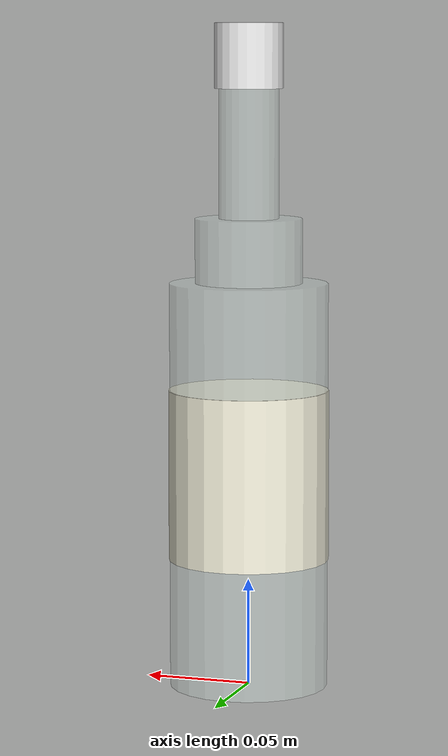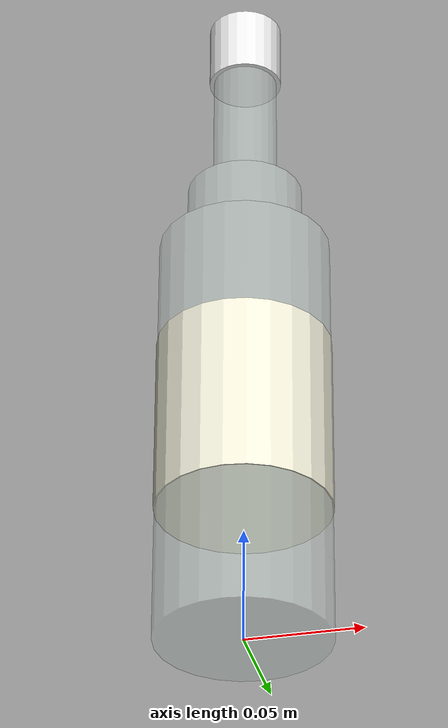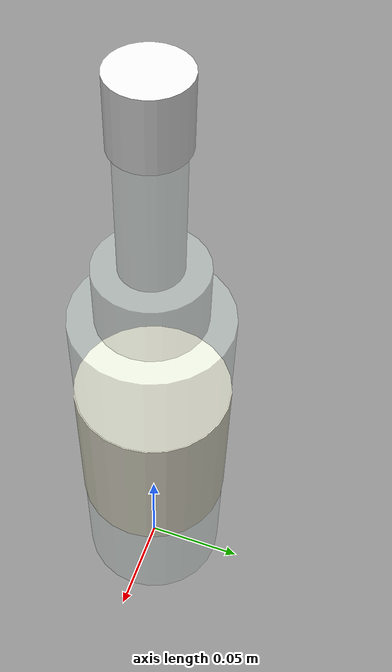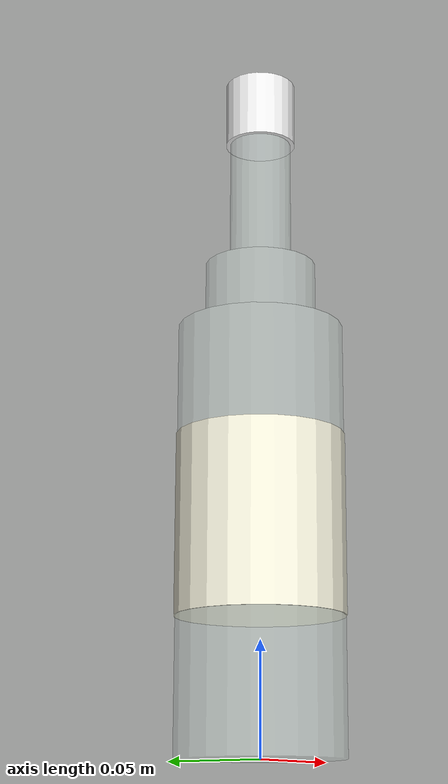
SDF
<?xml version="1.0" ?>
<!-- GENERATED by ros2_ws/src/bartender_gazebo/scripts/make_real_bar_bottles.py.
     Edit that script and re-run it; edits here are overwritten. -->
<sdf version="1.9">
  <model name="zubrowka_bottle">
    <link name="link">
      <inertial><pose>0 0 0.155 0 0 0</pose><mass>1.2</mass><inertia><ixx>0.010032</ixx><iyy>0.010032</iyy><izz>0.000844</izz><ixy>0</ixy><ixz>0</ixz><iyz>0</iyz></inertia></inertial>
      <velocity_decay><linear>0.05</linear><angular>0.30</angular></velocity_decay>
      <visual name="v0"><pose>0 0.0 0.095 0 0 0</pose><geometry><cylinder><radius>0.037</radius><length>0.19</length></cylinder></geometry><material><ambient>0.255 0.276 0.27 1</ambient><diffuse>0.85 0.92 0.9 0.35</diffuse><specular>0.6 0.6 0.6 1</specular></material><transparency>0.65</transparency></visual>
      <collision name="c0"><pose>0 0 0.095 0 0 0</pose><geometry><cylinder><radius>0.037</radius><length>0.19</length></cylinder></geometry><surface><friction><ode><mu>0.9</mu><mu2>0.9</mu2></ode></friction></surface></collision>
      <visual name="v1"><pose>0 0.0 0.1 0 0 0</pose><geometry><cylinder><radius>0.0375</radius><length>0.08</length></cylinder></geometry><material><ambient>0.279 0.276 0.252 1</ambient><diffuse>0.93 0.92 0.84 1</diffuse><specular>0.6 0.6 0.6 1</specular></material></visual>
      <visual name="v2"><pose>0 0.0 0.205 0 0 0</pose><geometry><cylinder><radius>0.025</radius><length>0.03</length></cylinder></geometry><material><ambient>0.255 0.276 0.27 1</ambient><diffuse>0.85 0.92 0.9 0.35</diffuse><specular>0.6 0.6 0.6 1</specular></material><transparency>0.65</transparency></visual>
      <collision name="c2"><pose>0 0 0.205 0 0 0</pose><geometry><cylinder><radius>0.025</radius><length>0.03</length></cylinder></geometry><surface><friction><ode><mu>0.9</mu><mu2>0.9</mu2></ode></friction></surface></collision>
      <visual name="v3"><pose>0 0.0 0.25 0 0 0</pose><geometry><cylinder><radius>0.014</radius><length>0.06</length></cylinder></geometry><material><ambient>0.255 0.276 0.27 1</ambient><diffuse>0.85 0.92 0.9 0.35</diffuse><specular>0.6 0.6 0.6 1</specular></material><transparency>0.65</transparency></visual>
      <collision name="c3"><pose>0 0 0.25 0 0 0</pose><geometry><cylinder><radius>0.014</radius><length>0.06</length></cylinder></geometry><surface><friction><ode><mu>0.9</mu><mu2>0.9</mu2></ode></friction></surface></collision>
      <visual name="v4"><pose>0 0.0 0.295 0 0 0</pose><geometry><cylinder><radius>0.016</radius><length>0.03</length></cylinder></geometry><material><ambient>0.276 0.276 0.276 1</ambient><diffuse>0.92 0.92 0.92 1</diffuse><specular>0.6 0.6 0.6 1</specular></material></visual>
    </link>
  </model>
</sdf>
